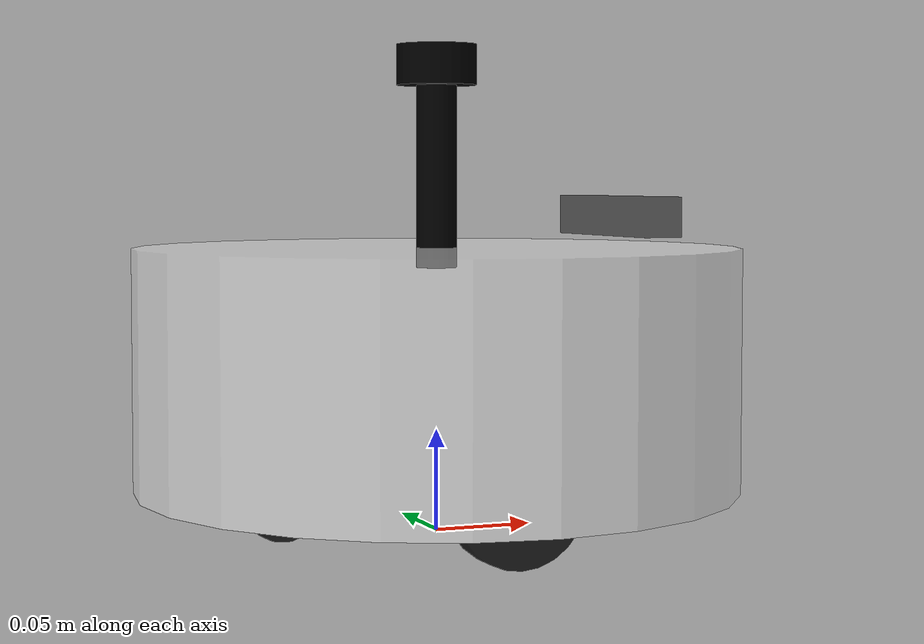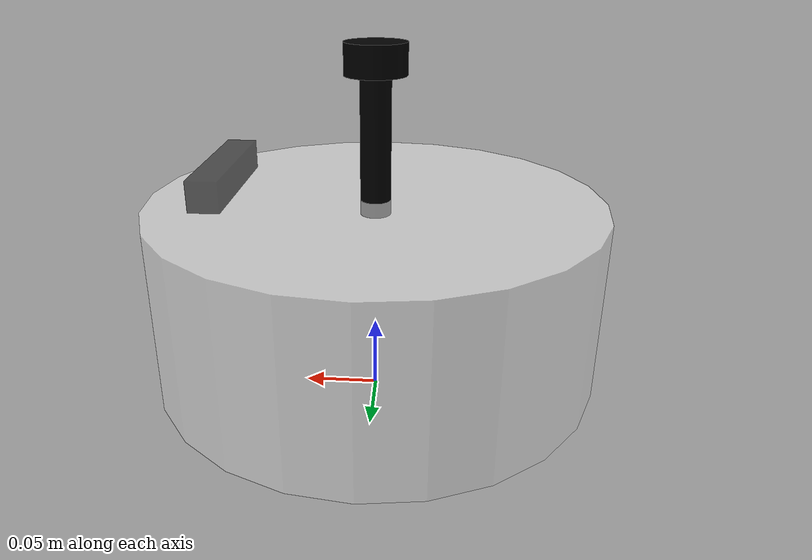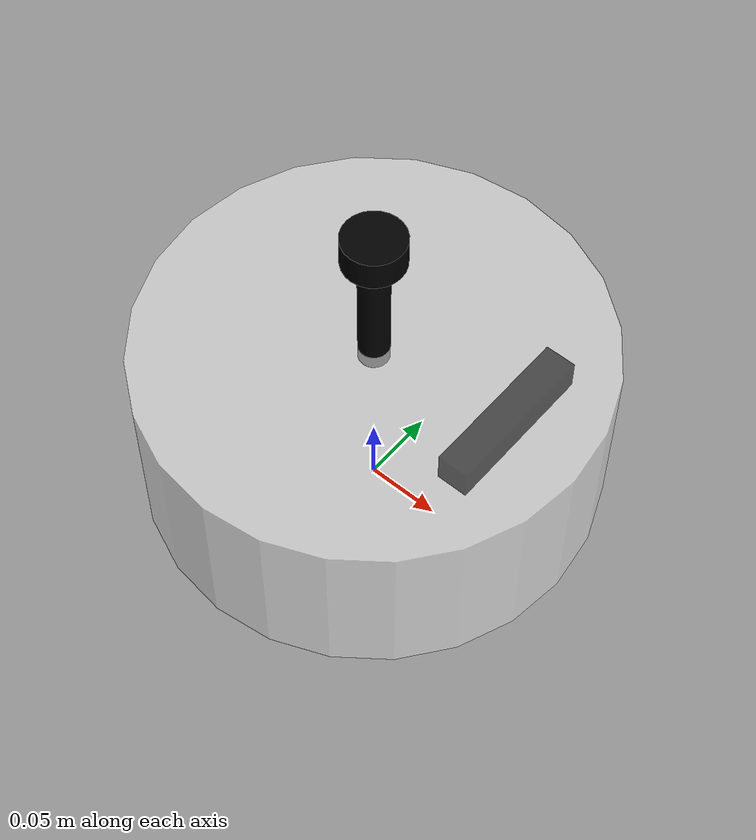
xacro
<?xml version="1.0"?>
<robot xmlns:xacro="http://ros.org/wiki/xacro" name="clean_robot">
<xacro:include filename="$(find cleanbot_description)/urdf/cleanbot/base.urdf.xacro"/>

<xacro:include filename="$(find cleanbot_description)/urdf/cleanbot/sensor/camera.urdf.xacro"/>
<xacro:include filename="$(find cleanbot_description)/urdf/cleanbot/sensor/imu.urdf.xacro"/>
<xacro:include filename="$(find cleanbot_description)/urdf/cleanbot/sensor/laser.urdf.xacro"/>

<xacro:include filename="$(find cleanbot_description)/urdf/cleanbot/actuator/wheel.urdf.xacro"/>
<xacro:include filename="$(find cleanbot_description)/urdf/cleanbot/actuator/caster.urdf.xacro"/>

<xacro:include filename="$(find cleanbot_description)/urdf/cleanbot/plugins/gazebo_sensor_plugin.xacro"/>
<xacro:include filename="$(find cleanbot_description)/urdf/cleanbot/cleanbot.ros2_control.xacro"/>

<xacro:base_xacro length="0.12" radius="0.15"/>

<xacro:imu_xacro xyz="0.0 0.0 0.02" />
<xacro:camera_xacro xyz="0.1 0.0 0.075" />
<xacro:laser_xacro xyz="0.0 0.0 0.10" />

<xacro:wheel_xacro wheel_name="left_wheel" xyz="0.0 0.1 -0.05" />
<xacro:wheel_xacro wheel_name="right_wheel" xyz="0.0 -0.1 -0.05" />
<xacro:caster_xacro caster_name="forawrd_caster" xyz="0.08 0.0 -0.062" />
<xacro:caster_xacro caster_name="back_caster" xyz="-0.08 0.0 -0.062" />

<xacro:gazebo_sensor_plugin />
<xacro:cleanbot_ros2_control />

</robot>

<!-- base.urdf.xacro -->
<robot xmlns:xacro="http://ros.org/wiki/xacro" >
    <xacro:include filename="$(find cleanbot_description)/urdf/cleanbot/common_inertia.xacro"/>

   <xacro:macro name="base_xacro" params="length radius">
        <link name="base_footprint" />

        <!-- Define the base link of the robot -->
        <link name="base_link">
            <!-- Visual representation of the base link -->
            <visual>
                <!--沿着自己几何中心的偏移和旋转-->
                <origin xyz="0 0 0" rpy="0 0 0"/>
                <!--几何形状-->
                <geometry>
                    <!--圆柱体-->
                    <cylinder radius="${radius}" length="${length}"/>
                </geometry>
                <!--材质-->
                <material name="white">
                    <color rgba="1 1 1 0.5"/>
                </material>
            </visual>
            <collision>
                <origin xyz="0 0 0" rpy="0 0 0"/>
                <geometry>
                    <cylinder radius="${radius}" length="${length}"/>
                </geometry>
                <material name="white">
                    <color rgba="1 1 1 0.5"/>
                </material>
            </collision>>

            <!--惯量属性-->
            <xacro:cylinder_inertia m="1.0" r="${radius}" h="${length}"/>
        </link>

        <!--定义关节：base_footprint到base_link-->
        <joint name="base_to_base_footprint" type="fixed">
            <parent link="base_footprint"/>
            <child link="base_link"/>
            <origin xyz="0 0 ${length/2+0.022-0.001}" rpy="0 0 0"/>
        </joint>

   </xacro:macro>
</robot>

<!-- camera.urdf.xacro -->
<robot xmlns:xacro="http://ros.org/wiki/xacro">
<xacro:include filename="$(find cleanbot_description)/urdf/cleanbot/common_inertia.xacro"/>

   <xacro:macro name="camera_xacro" params="xyz">
        <!--camera部件-->
        <link name="camera_link">
            <!-- Visual representation of the base link -->
            <visual>
                <!--沿着自己几何中心的偏移和旋转-->
                <origin xyz="0 0 0" rpy="0 0 0"/>
                <!--几何形状-->
                <geometry>
                    <!--正方体-->
                    <box size="0.02 0.10 0.02"/>
                </geometry>
                <!--材质-->
                <material name="black">
                    <color rgba="0 0 0 0.5"/>
                </material>
            </visual>

            <collision>
                <origin xyz="0 0 0" rpy="0 0 0"/>
                <geometry>
                    <!--正方体-->
                    <box size="0.02 0.10 0.02"/>
                </geometry>
                <material name="black">
                    <color rgba="0 0 0 0.5"/>
                </material>
            </collision>

            <xacro:box_inertia m="0.1" w="0.02" h="0.10" d="0.02"/>
        </link>

        <link name="camera_optical_link"></link>

        <!--定义关节：base_link到imu_link-->
        <joint name="camera_joint" type="fixed">
            <parent link="base_link"/>
            <child link="camera_link"/>
            <origin xyz="${xyz}" rpy="0 0 0"/>
        </joint>

        <!--定义关节：base_link到imu_link-->
        <joint name="camera_optical_joint" type="fixed">
            <parent link="camera_link"/>
            <child link="camera_optical_link"/>
            <origin xyz="0 0 0" rpy="${-pi/2} 0 ${-pi/2}"/>
        </joint>
   </xacro:macro>

</robot>

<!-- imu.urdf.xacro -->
<robot xmlns:xacro="http://ros.org/wiki/xacro">
<xacro:include filename="$(find cleanbot_description)/urdf/cleanbot/common_inertia.xacro"/>
   <xacro:macro name="imu_xacro" params="xyz">
        <!--IMU部件-->
        <link name="imu_link">
            <!-- Visual representation of the base link -->
            <visual>
                <!--沿着自己几何中心的偏移和旋转-->
                <origin xyz="0 0 0" rpy="0 0 0"/>
                <!--几何形状-->
                <geometry>
                    <!--正方体-->
                    <box size="0.02 0.02 0.02"/>
                </geometry>
                <!--材质-->
                <material name="black">
                    <color rgba="0 0 0 0.5"/>
                </material>
            </visual>
            <collision>
                <origin xyz="0 0 0" rpy="0 0 0"/>
                <geometry>
                    <!--正方体-->
                    <box size="0.02 0.02 0.02"/>
                </geometry>
                <material name="black">
                    <color rgba="0 0 0 0.5"/>
                </material>
            </collision>

            <xacro:box_inertia m="0.05" w="0.02" h="0.02" d="0.02"/>
        </link>

        <!--定义关节：base_link到imu_link-->
        <joint name="imu_joint" type="fixed">
            <parent link="base_link"/>
            <child link="imu_link"/>
            <origin xyz="${xyz}" rpy="0 0 0"/>
        </joint>
   </xacro:macro>

</robot>

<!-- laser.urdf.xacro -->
<robot xmlns:xacro="http://ros.org/wiki/xacro">
<xacro:include filename="$(find cleanbot_description)/urdf/cleanbot/common_inertia.xacro"/>
   <xacro:macro name="laser_xacro" params="xyz">
        <!--雷达支撑杆-->
        <link name="laser_cylinder_link">
            <!-- Visual representation of the base link -->
            <visual>
                <!--沿着自己几何中心的偏移和旋转-->
                <origin xyz="0 0 0" rpy="0 0 0"/>
                <!--几何形状-->
                <geometry>
                    <!--圆柱体-->
                    <cylinder radius="0.01" length="0.1"/>
                </geometry>
                <!--材质-->
                <material name="black">
                    <color rgba="0 0 0 1.0"/>
                </material>
            </visual>

            <collision>
                <origin xyz="0 0 0" rpy="0 0 0"/>
                <geometry>
                    <cylinder radius="0.01" length="0.1"/>
                </geometry>
                <material name="black">
                    <color rgba="0 0 0 1.0"/>
                </material>
            </collision>

            <xacro:cylinder_inertia m="0.05" r="0.01" h="0.1"/>
        </link>

        <!--雷达-->
        <link name="laser_link">
            <!-- Visual representation of the base link -->
            <visual>
                <!--沿着自己几何中心的偏移和旋转-->
                <origin xyz="0 0 0" rpy="0 0 0"/>
                <!--几何形状-->
                <geometry>
                    <!--圆柱体-->
                    <cylinder radius="0.02" length="0.02"/>
                </geometry>
                <!--材质-->
                <material name="black">
                    <color rgba="0 0 0 1.0"/>
                </material>
            </visual>

            <collision>
                <origin xyz="0 0 0" rpy="0 0 0"/>
                <geometry>
                    <!--圆柱体-->
                    <cylinder radius="0.02" length="0.02"/>
                </geometry>
                <material name="black">
                    <color rgba="0 0 0 1.0"/>
                </material>
            </collision>

            <xacro:cylinder_inertia m="0.1" r="0.02" h="0.02"/>
        </link>

        <!--定义关节：laser_link到laser_cylinder_link-->
        <joint name="laser_joint" type="fixed">
            <parent link="laser_cylinder_link"/>
            <child link="laser_link"/>
            <origin xyz="0 0 0.05" rpy="0 0 0"/>
        </joint>

        <!--定义关节：laser_link到laser_cylinder_link-->
        <joint name="laser_cylinder_joint" type="fixed">
            <parent link="base_link"/>
            <child link="laser_cylinder_link"/>
            <origin xyz="${xyz}" rpy="0 0 0"/>
        </joint>

        <gazebo reference="laser_link">
            <material>Gazebo/Black</material>
        </gazebo>
        <gazebo reference="laser_cylinder_link">
            <material>Gazebo/Black</material>
        </gazebo>
   </xacro:macro>
</robot>

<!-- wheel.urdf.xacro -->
<robot xmlns:xacro="http://ros.org/wiki/xacro">
<xacro:include filename="$(find cleanbot_description)/urdf/cleanbot/common_inertia.xacro"/>
   <xacro:macro name="wheel_xacro" params="wheel_name xyz">
        <!--IMU部件-->
        <link name="${wheel_name}_link">
            <!-- Visual representation of the base link -->
            <visual>
                <!--沿着自己几何中心的偏移和旋转-->
                <origin xyz="0 0 0" rpy="1.57079 0 0"/>
                <!--几何形状-->
                <geometry>
                    <cylinder radius="0.032" length="0.015"/>
                </geometry>
                <!--材质-->
                <material name="black">
                    <color rgba="0 0 0 0.8"/>
                </material>
            </visual>
            <collision>
                <origin xyz="0 0 0" rpy="1.57079 0 0"/>
                <geometry>
                    <cylinder radius="0.032" length="0.015"/>
                </geometry>
                <material name="black">
                    <color rgba="0 0 0 0.8"/>
                </material>
            </collision>
            <xacro:cylinder_inertia m="0.05" r="0.032" h="0.015"/>
        </link>

        <!--定义关节：base_link到imu_link-->
        <joint name="${wheel_name}_joint" type="continuous">
            <parent link="base_link"/>
            <child link="${wheel_name}_link"/>
            <origin xyz="${xyz}" rpy="0 0 0"/>
            <axis xyz="0.0 1 0.0"/>
        </joint>

        <gazebo reference="${wheel_name}_link">
            <material>Gazebo/Black</material>
            <mu1 value="20.0"/>
            <mu2 value="20.0"/>
            <kp value="1000000000.0"/>
            <kd value="1.0"/>
        </gazebo>

   </xacro:macro>

</robot>

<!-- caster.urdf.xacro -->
<robot xmlns:xacro="http://ros.org/wiki/xacro">
<xacro:include filename="$(find cleanbot_description)/urdf/cleanbot/common_inertia.xacro"/>
   <xacro:macro name="caster_xacro" params="caster_name xyz">
        <!--IMU部件-->
        <link name="${caster_name}_link">
            <!-- Visual representation of the base link -->
            <visual>
                <!--沿着自己几何中心的偏移和旋转-->
                <origin xyz="0 0 0" rpy="0 0 0"/>
                <!--几何形状-->
                <geometry>
                    <sphere radius="0.02"/>
                </geometry>
                <!--材质-->
                <material name="black">
                    <color rgba="0 0 0 0.8"/>
                </material>
            </visual>
            <collision>
                <origin xyz="0 0 0" rpy="0 0 0"/>
                <geometry>
                    <sphere radius="0.02"/>
                </geometry>
                <material name="black">
                    <color rgba="0 0 0 0.8"/>
                </material>
            </collision>
            <xacro:sphere_inertia m="0.03" r="0.02"/>
        </link>

        <!--定义关节：base_link到imu_link-->
        <joint name="${caster_name}_joint" type="fixed">
            <parent link="base_link"/>
            <child link="${caster_name}_link"/>
            <origin xyz="${xyz}" rpy="0 0 0"/>

        </joint>

        <gazebo reference="${caster_name}_link">
            <material>Gazebo/Black</material>
            <mu1 value="0.0"/>
            <mu2 value="0.0"/>
            <kp value="1000000000.0"/>
            <kd value="1.0"/>
        </gazebo>
   </xacro:macro>

</robot>
